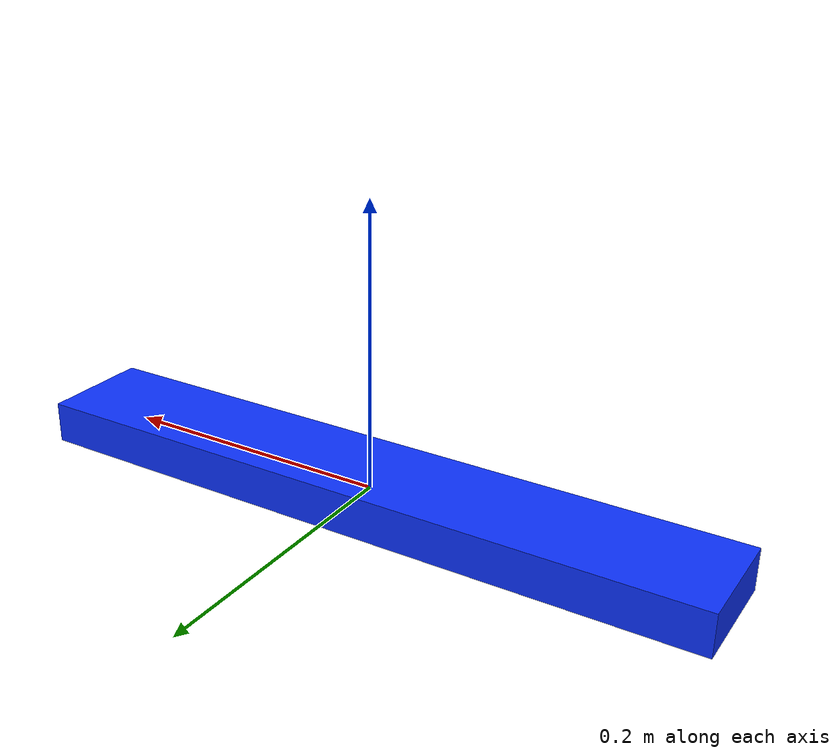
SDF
<?xml version="1.0"?>
<sdf version="1.8">
  <model name="tof_low_curb_3cm">
    <static>true</static>
    <link name="link">
      <collision name="collision">
        <geometry>
          <box>
            <size>0.50 0.08 0.03</size>
          </box>
        </geometry>
      </collision>
      <visual name="visual">
        <geometry>
          <box>
            <size>0.50 0.08 0.03</size>
          </box>
        </geometry>
        <material>
          <ambient>0.05 0.20 1.00 1</ambient>
          <diffuse>0.05 0.20 1.00 1</diffuse>
        </material>
      </visual>
    </link>
  </model>
</sdf>
